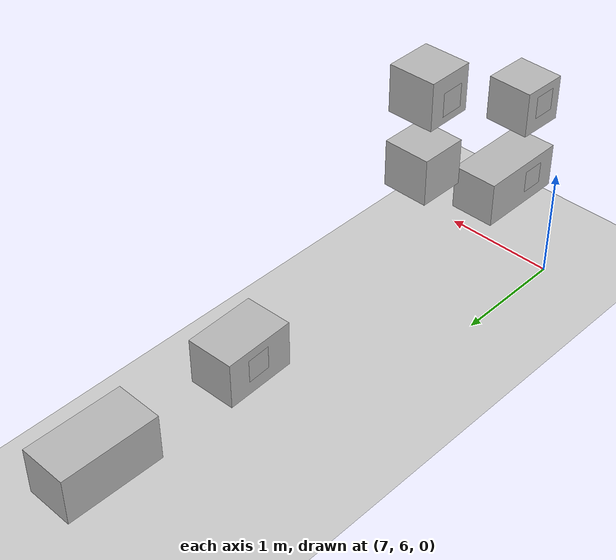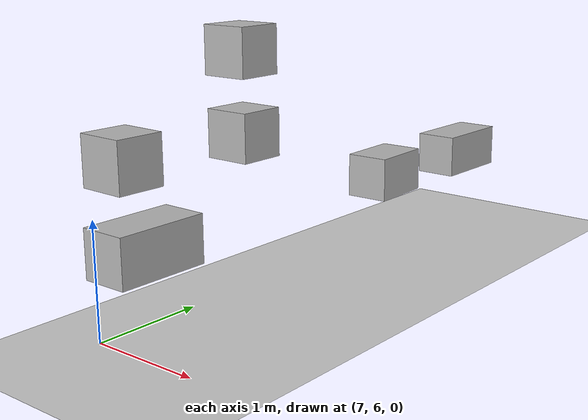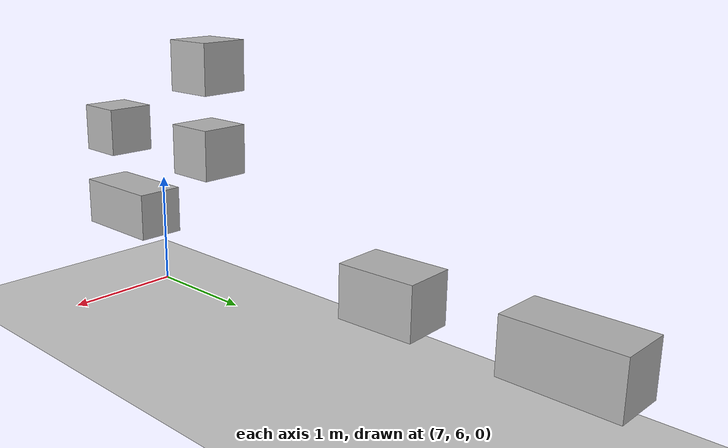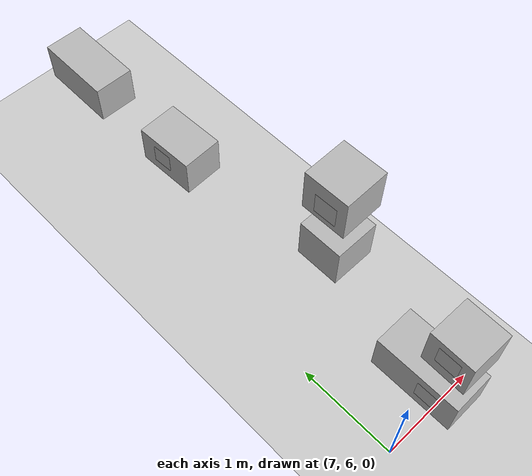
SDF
<sdf version="1.6">
 <world name="default">
  <model name="ground_plane">
   <static>1</static>
   <link name="link">
    <collision name="collision">
     <geometry><plane><normal>0 0 1</normal><size>300 300</size></plane></geometry>
     <surface>
      <contact><collide_bitmask>65535</collide_bitmask></contact>
      <friction><ode><mu>100</mu><mu2>50</mu2></ode></friction>
     </surface>
    </collision>
    <visual name="visual">
     <geometry><plane><normal>0 0 1</normal><size>100 100</size></plane></geometry>
     <material>
      <script><uri>file://media/materials/scripts/gazebo.material</uri><name>Gazebo/Grey</name></script>
     </material>
    </visual>
   </link>
  </model>
  <model name="CuboQR8">
   <link name="link">
    <pose>1.33161 0.916406 0.895911 -0 -0 -0.362899</pose>
    <inertial>
     <mass>0.39</mass>
     <inertia><ixx>0.00058</ixx><ixy>0</ixy><ixz>0</ixz><iyy>0.00058</iyy><iyz>0</iyz><izz>0.00019</izz></inertia>
    </inertial>
    <visual name="visual">
     <geometry><box><size>0.4 0.8 0.4</size></box></geometry>
     <material>
      <script>
       <uri>model://Caja/materials/scripts</uri>
       <uri>model://Caja/materials/textures</uri>
       <name>Caja/Diffuse</name>
      </script>
      <shader type="pixel"/>
     </material>
    </visual>
    <collision name="collision">
     <geometry><box><size>0.4 0.8 0.4</size></box></geometry>
     <surface>
      <friction>
       <ode><mu>1</mu><mu2>1</mu2><fdir1>0 0 0</fdir1><slip1>0</slip1><slip2>0</slip2></ode>
       <torsional>
        <coefficient>1</coefficient>
        <patch_radius>0</patch_radius>
        <surface_radius>0</surface_radius>
        <use_patch_radius>1</use_patch_radius>
        <ode><slip>0</slip></ode>
       </torsional>
      </friction>
      <bounce><restitution_coefficient>0</restitution_coefficient><threshold>1e+06</threshold></bounce>
      <contact>
       <collide_without_contact>0</collide_without_contact>
       <collide_without_contact_bitmask>1</collide_without_contact_bitmask>
       <collide_bitmask>1</collide_bitmask>
       <ode>
        <soft_cfm>0</soft_cfm>
        <soft_erp>0.2</soft_erp>
        <kp>1e+13</kp>
        <kd>1</kd>
        <max_vel>0.01</max_vel>
        <min_depth>0</min_depth>
       </ode>
       <bullet>
        <split_impulse>1</split_impulse>
        <split_impulse_penetration_threshold>-0.01</split_impulse_penetration_threshold>
        <soft_cfm>0</soft_cfm>
        <soft_erp>0.2</soft_erp>
        <kp>1e+13</kp>
        <kd>1</kd>
       </bullet>
      </contact>
     </surface>
    </collision>
   </link>
   <static>0</static>
   <pose>6.52855 9.13895 -0.044992 -1.8e-05 -2.1e-05 0.354797</pose>
  </model>
  <model name="CuboQR30">
   <link name="link">
    <pose>1.4917 0.506438 0.904274 0 -0 0.004736</pose>
    <inertial>
     <mass>0.39</mass>
     <inertia><ixx>0.00058</ixx><ixy>0</ixy><ixz>0</ixz><iyy>0.00058</iyy><iyz>0</iyz><izz>0.00019</izz></inertia>
    </inertial>
    <visual name="visual">
     <geometry><box><size>0.4 0.6 0.4</size></box></geometry>
     <material>
      <script>
       <uri>model://Caja/materials/scripts</uri>
       <uri>model://Caja/materials/textures</uri>
       <name>Caja/Diffuse</name>
      </script>
      <shader type="pixel"/>
     </material>
    </visual>
    <collision name="collision">
     <geometry><box><size>0.4 0.6 0.4</size></box></geometry>
     <surface>
      <friction>
       <ode><mu>1</mu><mu2>1</mu2><fdir1>0 0 0</fdir1><slip1>0</slip1><slip2>0</slip2></ode>
       <torsional>
        <coefficient>1</coefficient>
        <patch_radius>0</patch_radius>
        <surface_radius>0</surface_radius>
        <use_patch_radius>1</use_patch_radius>
        <ode><slip>0</slip></ode>
       </torsional>
      </friction>
      <bounce><restitution_coefficient>0</restitution_coefficient><threshold>1e+06</threshold></bounce>
      <contact>
       <collide_without_contact>0</collide_without_contact>
       <collide_without_contact_bitmask>1</collide_without_contact_bitmask>
       <collide_bitmask>1</collide_bitmask>
       <ode>
        <soft_cfm>0</soft_cfm>
        <soft_erp>0.2</soft_erp>
        <kp>1e+13</kp>
        <kd>1</kd>
        <max_vel>0.01</max_vel>
        <min_depth>0</min_depth>
       </ode>
       <bullet>
        <split_impulse>1</split_impulse>
        <split_impulse_penetration_threshold>-0.01</split_impulse_penetration_threshold>
        <soft_cfm>0</soft_cfm>
        <soft_erp>0.2</soft_erp>
        <kp>1e+13</kp>
        <kd>1</kd>
       </bullet>
      </contact>
     </surface>
    </collision>
   </link>
   <static>0</static>
   <pose>5.99378 8.57527 -0.053353 -9e-06 -7e-06 0.031822</pose>
  </model>
  <model name="CuboQR4">
   <link name="link">
    <pose>1.4541 1.7784 0.940521 0 -0 0</pose>
    <inertial>
     <mass>0.39</mass>
     <inertia><ixx>0.00058</ixx><ixy>0</ixy><ixz>0</ixz><iyy>0.00058</iyy><iyz>0</iyz><izz>0.00019</izz></inertia>
    </inertial>
    <visual name="visual">
     <geometry><box><size>0.4 0.8 0.4</size></box></geometry>
     <material>
      <script>
       <uri>model://Caja/materials/scripts</uri>
       <uri>model://Caja/materials/textures</uri>
       <name>Caja/Diffuse</name>
      </script>
      <shader type="pixel"/>
     </material>
    </visual>
    <collision name="collision">
     <geometry><box><size>0.4 0.8 0.4</size></box></geometry>
     <surface>
      <friction>
       <ode><mu>1</mu><mu2>1</mu2><fdir1>0 0 0</fdir1><slip1>0</slip1><slip2>0</slip2></ode>
       <torsional>
        <coefficient>1</coefficient>
        <patch_radius>0</patch_radius>
        <surface_radius>0</surface_radius>
        <use_patch_radius>1</use_patch_radius>
        <ode><slip>0</slip></ode>
       </torsional>
      </friction>
      <bounce><restitution_coefficient>0</restitution_coefficient><threshold>1e+06</threshold></bounce>
      <contact>
       <collide_without_contact>0</collide_without_contact>
       <collide_without_contact_bitmask>1</collide_without_contact_bitmask>
       <collide_bitmask>1</collide_bitmask>
       <ode>
        <soft_cfm>0</soft_cfm>
        <soft_erp>0.2</soft_erp>
        <kp>1e+13</kp>
        <kd>1</kd>
        <max_vel>0.01</max_vel>
        <min_depth>0</min_depth>
       </ode>
       <bullet>
        <split_impulse>1</split_impulse>
        <split_impulse_penetration_threshold>-0.01</split_impulse_penetration_threshold>
        <soft_cfm>0</soft_cfm>
        <soft_erp>0.2</soft_erp>
        <kp>1e+13</kp>
        <kd>1</kd>
       </bullet>
      </contact>
     </surface>
    </collision>
   </link>
   <static>0</static>
   <pose>5.98441 4.34882 -0.089588 -1.1e-05 6e-06 0.00113</pose>
  </model>
  <model name="CuboQR2">
   <link name="link">
    <pose>1.59419 -0.501465 1.58657 -0 -0 -0.004218</pose>
    <inertial>
     <mass>0.39</mass>
     <inertia><ixx>0.00058</ixx><ixy>0</ixy><ixz>0</ixz><iyy>0.00058</iyy><iyz>0</iyz><izz>0.00019</izz></inertia>
    </inertial>
    <visual name="visual">
     <geometry><box><size>0.4 0.4 0.4</size></box></geometry>
     <material>
      <script>
       <uri>model://Caja/materials/scripts</uri>
       <uri>model://Caja/materials/textures</uri>
       <name>Caja/Diffuse</name>
      </script>
      <shader type="pixel"/>
     </material>
    </visual>
    <collision name="collision">
     <geometry><box><size>0.4 0.4 0.4</size></box></geometry>
     <surface>
      <friction>
       <ode><mu>1</mu><mu2>1</mu2><fdir1>0 0 0</fdir1><slip1>0</slip1><slip2>0</slip2></ode>
       <torsional>
        <coefficient>1</coefficient>
        <patch_radius>0</patch_radius>
        <surface_radius>0</surface_radius>
        <use_patch_radius>1</use_patch_radius>
        <ode><slip>0</slip></ode>
       </torsional>
      </friction>
      <bounce><restitution_coefficient>0</restitution_coefficient><threshold>1e+06</threshold></bounce>
      <contact>
       <collide_without_contact>0</collide_without_contact>
       <collide_without_contact_bitmask>1</collide_without_contact_bitmask>
       <collide_bitmask>1</collide_bitmask>
       <ode>
        <soft_cfm>0</soft_cfm>
        <soft_erp>0.2</soft_erp>
        <kp>1e+13</kp>
        <kd>1</kd>
        <max_vel>0.01</max_vel>
        <min_depth>0</min_depth>
       </ode>
       <bullet>
        <split_impulse>1</split_impulse>
        <split_impulse_penetration_threshold>-0.01</split_impulse_penetration_threshold>
        <soft_cfm>0</soft_cfm>
        <soft_erp>0.2</soft_erp>
        <kp>1e+13</kp>
        <kd>1</kd>
       </bullet>
      </contact>
     </surface>
    </collision>
   </link>
   <static>0</static>
   <pose>5.85276 6.48199 -0.048201 -3e-06 -3e-06 -0.016995</pose>
  </model>
  <model name="CuboQR3">
   <link name="link">
    <pose>1.72852 -0.054688 2.25892 0 -0 0.030523</pose>
    <inertial>
     <mass>0.39</mass>
     <inertia><ixx>0.00058</ixx><ixy>0</ixy><ixz>0</ixz><iyy>0.00058</iyy><iyz>0</iyz><izz>0.00019</izz></inertia>
    </inertial>
    <visual name="visual">
     <geometry><box><size>0.4 0.4 0.4</size></box></geometry>
     <material>
      <script>
       <uri>model://Caja/materials/scripts</uri>
       <uri>model://Caja/materials/textures</uri>
       <name>Caja/Diffuse</name>
      </script>
      <shader type="pixel"/>
     </material>
    </visual>
    <collision name="collision">
     <geometry><box><size>0.4 0.4 0.4</size></box></geometry>
     <surface>
      <friction>
       <ode><mu>1</mu><mu2>1</mu2><fdir1>0 0 0</fdir1><slip1>0</slip1><slip2>0</slip2></ode>
       <torsional>
        <coefficient>1</coefficient>
        <patch_radius>0</patch_radius>
        <surface_radius>0</surface_radius>
        <use_patch_radius>1</use_patch_radius>
        <ode><slip>0</slip></ode>
       </torsional>
      </friction>
      <bounce><restitution_coefficient>0</restitution_coefficient><threshold>1e+06</threshold></bounce>
      <contact>
       <collide_without_contact>0</collide_without_contact>
       <collide_without_contact_bitmask>1</collide_without_contact_bitmask>
       <collide_bitmask>1</collide_bitmask>
       <ode>
        <soft_cfm>0</soft_cfm>
        <soft_erp>0.2</soft_erp>
        <kp>1e+13</kp>
        <kd>1</kd>
        <max_vel>0.01</max_vel>
        <min_depth>0</min_depth>
       </ode>
       <bullet>
        <split_impulse>1</split_impulse>
        <split_impulse_penetration_threshold>-0.01</split_impulse_penetration_threshold>
        <soft_cfm>0</soft_cfm>
        <soft_erp>0.2</soft_erp>
        <kp>1e+13</kp>
        <kd>1</kd>
       </bullet>
      </contact>
     </surface>
    </collision>
   </link>
   <static>0</static>
   <pose>5.70275 7.29111 -0.054836 -5e-06 2e-06 -0.018589</pose>
  </model>
  <model name="Plano">
   <link name="link">
    <gravity>0</gravity>
    <pose>-0.103478 0.986463 0.8108 0 -0 0</pose>
    <inertial>
     <mass>1e-06</mass>
     <inertia><ixx>0.00058</ixx><ixy>0</ixy><ixz>0</ixz><iyy>0.00058</iyy><iyz>0</iyz><izz>0.00019</izz></inertia>
    </inertial>
    <visual name="visual">
     <geometry><box><size>0.2 1e-06 0.2</size></box></geometry>
     <material>
      <script>
       <uri>model://Plano/materials/scripts</uri>
       <uri>model://Plano/materials/textures</uri>
       <name>Plano/Diffuse</name>
      </script>
      <shader type="pixel"/>
     </material>
     <cast_shadows>0</cast_shadows>
    </visual>
    <collision name="collision">
     <geometry><box><size>0.2 1e-06 0.2</size></box></geometry>
     <surface>
      <friction>
       <ode><mu>1</mu><mu2>1</mu2><fdir1>0 0 0</fdir1><slip1>0</slip1><slip2>0</slip2></ode>
       <torsional>
        <coefficient>1</coefficient>
        <patch_radius>0</patch_radius>
        <surface_radius>0</surface_radius>
        <use_patch_radius>1</use_patch_radius>
        <ode><slip>0</slip></ode>
       </torsional>
      </friction>
      <bounce><restitution_coefficient>0</restitution_coefficient><threshold>1e+06</threshold></bounce>
      <contact>
       <collide_without_contact>0</collide_without_contact>
       <collide_without_contact_bitmask>1</collide_without_contact_bitmask>
       <collide_bitmask>1</collide_bitmask>
       <ode>
        <soft_cfm>0</soft_cfm>
        <soft_erp>0.2</soft_erp>
        <kp>1e+13</kp>
        <kd>1</kd>
        <max_vel>0.01</max_vel>
        <min_depth>0</min_depth>
       </ode>
       <bullet>
        <split_impulse>1</split_impulse>
        <split_impulse_penetration_threshold>-0.01</split_impulse_penetration_threshold>
        <soft_cfm>0</soft_cfm>
        <soft_erp>0.2</soft_erp>
        <kp>1e+13</kp>
        <kd>1</kd>
       </bullet>
      </contact>
     </surface>
    </collision>
   </link>
   <static>0</static>
   <pose>6.24495 5.89293 0.053748 0 0 -1.57043</pose>
  </model>
  <model name="Plano2">
   <link name="link">
    <gravity>0</gravity>
    <pose>0.45527 1.12131 0.660976 0 -0 0</pose>
    <inertial>
     <mass>1e-06</mass>
     <inertia><ixx>0.00058</ixx><ixy>0</ixy><ixz>0</ixz><iyy>0.00058</iyy><iyz>0</iyz><izz>0.00019</izz></inertia>
    </inertial>
    <visual name="visual">
     <geometry><box><size>0.2 1e-06 0.2</size></box></geometry>
     <material>
      <script>
       <uri>model://Plano2/materials/scripts</uri>
       <uri>model://Plano2/materials/textures</uri>
       <name>Plano2/Diffuse</name>
      </script>
      <shader type="pixel"/>
     </material>
     <cast_shadows>0</cast_shadows>
    </visual>
    <collision name="collision">
     <geometry><box><size>0.2 1e-06 0.2</size></box></geometry>
     <surface>
      <friction>
       <ode><mu>1</mu><mu2>1</mu2><fdir1>0 0 0</fdir1><slip1>0</slip1><slip2>0</slip2></ode>
       <torsional>
        <coefficient>1</coefficient>
        <patch_radius>0</patch_radius>
        <surface_radius>0</surface_radius>
        <use_patch_radius>1</use_patch_radius>
        <ode><slip>0</slip></ode>
       </torsional>
      </friction>
      <bounce><restitution_coefficient>0</restitution_coefficient><threshold>1e+06</threshold></bounce>
      <contact>
       <collide_without_contact>0</collide_without_contact>
       <collide_without_contact_bitmask>1</collide_without_contact_bitmask>
       <collide_bitmask>1</collide_bitmask>
       <ode>
        <soft_cfm>0</soft_cfm>
        <soft_erp>0.2</soft_erp>
        <kp>1e+13</kp>
        <kd>1</kd>
        <max_vel>0.01</max_vel>
        <min_depth>0</min_depth>
       </ode>
       <bullet>
        <split_impulse>1</split_impulse>
        <split_impulse_penetration_threshold>-0.01</split_impulse_penetration_threshold>
        <soft_cfm>0</soft_cfm>
        <soft_erp>0.2</soft_erp>
        <kp>1e+13</kp>
        <kd>1</kd>
       </bullet>
      </contact>
     </surface>
    </collision>
   </link>
   <static>0</static>
   <pose>6.11634 6.41923 0.907634 0 0 -1.5813</pose>
  </model>
  <model name="Caja">
   <link name="link">
    <pose>1.53848 1.3495 -1.37205 0.031423 0.044064 -0.000927</pose>
    <inertial>
     <mass>0.39</mass>
     <inertia><ixx>0.00058</ixx><ixy>0</ixy><ixz>0</ixz><iyy>0.00058</iyy><iyz>0</iyz><izz>0.00019</izz></inertia>
    </inertial>
    <visual name="visual">
     <geometry><box><size>0.4 0.4 0.4</size></box></geometry>
     <material>
      <script>
       <uri>model://Caja/materials/scripts</uri>
       <uri>model://Caja/materials/textures</uri>
       <name>Caja/Diffuse</name>
      </script>
      <shader type="pixel"/>
     </material>
    </visual>
    <collision name="collision">
     <geometry><box><size>0.4 0.4 0.4</size></box></geometry>
     <surface>
      <friction>
       <ode><mu>1</mu><mu2>1</mu2><fdir1>0 0 0</fdir1><slip1>0</slip1><slip2>0</slip2></ode>
       <torsional>
        <coefficient>1</coefficient>
        <patch_radius>0</patch_radius>
        <surface_radius>0</surface_radius>
        <use_patch_radius>1</use_patch_radius>
        <ode><slip>0</slip></ode>
       </torsional>
      </friction>
      <bounce><restitution_coefficient>0</restitution_coefficient><threshold>1e+06</threshold></bounce>
      <contact>
       <collide_without_contact>0</collide_without_contact>
       <collide_without_contact_bitmask>1</collide_without_contact_bitmask>
       <collide_bitmask>1</collide_bitmask>
       <ode>
        <soft_cfm>0</soft_cfm>
        <soft_erp>0.2</soft_erp>
        <kp>1e+13</kp>
        <kd>1</kd>
        <max_vel>0.01</max_vel>
        <min_depth>0</min_depth>
       </ode>
       <bullet>
        <split_impulse>1</split_impulse>
        <split_impulse_penetration_threshold>-0.01</split_impulse_penetration_threshold>
        <soft_cfm>0</soft_cfm>
        <soft_erp>0.2</soft_erp>
        <kp>1e+13</kp>
        <kd>1</kd>
       </bullet>
      </contact>
     </surface>
    </collision>
   </link>
   <static>0</static>
   <pose>5.83995 5.86895 0.229064 1.5394 -0.002312 -0.046569</pose>
  </model>
  <model name="Plano4">
   <link name="link">
    <gravity>0</gravity>
    <pose>0.342529 1.36427 1.91258 0 -0 0.032722</pose>
    <inertial>
     <mass>1e-06</mass>
     <inertia><ixx>0.00058</ixx><ixy>0</ixy><ixz>0</ixz><iyy>0.00058</iyy><iyz>0</iyz><izz>0.00019</izz></inertia>
    </inertial>
    <visual name="visual">
     <geometry><box><size>0.2 1e-06 0.2</size></box></geometry>
     <material>
      <script>
       <uri>model://Plano4/materials/scripts</uri>
       <uri>model://Plano4/materials/textures</uri>
       <name>Plano4/Diffuse</name>
      </script>
      <shader type="pixel"/>
     </material>
     <cast_shadows>0</cast_shadows>
    </visual>
    <collision name="collision">
     <geometry><box><size>0.2 1e-06 0.2</size></box></geometry>
     <surface>
      <friction>
       <ode><mu>1</mu><mu2>1</mu2><fdir1>0 0 0</fdir1><slip1>0</slip1><slip2>0</slip2></ode>
       <torsional>
        <coefficient>1</coefficient>
        <patch_radius>0</patch_radius>
        <surface_radius>0</surface_radius>
        <use_patch_radius>1</use_patch_radius>
        <ode><slip>0</slip></ode>
       </torsional>
      </friction>
      <bounce><restitution_coefficient>0</restitution_coefficient><threshold>1e+06</threshold></bounce>
      <contact>
       <collide_without_contact>0</collide_without_contact>
       <collide_without_contact_bitmask>1</collide_without_contact_bitmask>
       <collide_bitmask>1</collide_bitmask>
       <ode>
        <soft_cfm>0</soft_cfm>
        <soft_erp>0.2</soft_erp>
        <kp>1e+13</kp>
        <kd>1</kd>
        <max_vel>0.01</max_vel>
        <min_depth>0</min_depth>
       </ode>
       <bullet>
        <split_impulse>1</split_impulse>
        <split_impulse_penetration_threshold>-0.01</split_impulse_penetration_threshold>
        <soft_cfm>0</soft_cfm>
        <soft_erp>0.2</soft_erp>
        <kp>1e+13</kp>
        <kd>1</kd>
       </bullet>
      </contact>
     </surface>
    </collision>
   </link>
   <static>0</static>
   <pose>5.86012 7.53798 0.26346 0 0 -1.5802</pose>
  </model>
  <model name="Plano30">
   <link name="link">
    <gravity>0</gravity>
    <pose>0.142948 1.63527 -0.030652 0 -0 0.095189</pose>
    <inertial>
     <mass>1e-06</mass>
     <inertia><ixx>0.00058</ixx><ixy>0</ixy><ixz>0</ixz><iyy>0.00058</iyy><iyz>0</iyz><izz>0.00019</izz></inertia>
    </inertial>
    <visual name="visual">
     <geometry><box><size>0.2 1e-06 0.2</size></box></geometry>
     <material>
      <script>
       <uri>model://Plano30/materials/scripts</uri>
       <uri>model://Plano30/materials/textures</uri>
       <name>Plano30/Diffuse</name>
      </script>
      <shader type="pixel"/>
     </material>
     <cast_shadows>0</cast_shadows>
    </visual>
    <collision name="collision">
     <geometry><box><size>0.2 1e-06 0.2</size></box></geometry>
     <surface>
      <friction>
       <ode><mu>1</mu><mu2>1</mu2><fdir1>0 0 0</fdir1><slip1>0</slip1><slip2>0</slip2></ode>
       <torsional>
        <coefficient>1</coefficient>
        <patch_radius>0</patch_radius>
        <surface_radius>0</surface_radius>
        <use_patch_radius>1</use_patch_radius>
        <ode><slip>0</slip></ode>
       </torsional>
      </friction>
      <bounce><restitution_coefficient>0</restitution_coefficient><threshold>1e+06</threshold></bounce>
      <contact>
       <collide_without_contact>0</collide_without_contact>
       <collide_without_contact_bitmask>1</collide_without_contact_bitmask>
       <collide_bitmask>1</collide_bitmask>
       <ode>
        <soft_cfm>0</soft_cfm>
        <soft_erp>0.2</soft_erp>
        <kp>1e+13</kp>
        <kd>1</kd>
        <max_vel>0.01</max_vel>
        <min_depth>0</min_depth>
       </ode>
       <bullet>
        <split_impulse>1</split_impulse>
        <split_impulse_penetration_threshold>-0.01</split_impulse_penetration_threshold>
        <soft_cfm>0</soft_cfm>
        <soft_erp>0.2</soft_erp>
        <kp>1e+13</kp>
        <kd>1</kd>
       </bullet>
      </contact>
     </surface>
    </collision>
   </link>
   <static>0</static>
   <pose>5.63172 9.35401 0.90979 0 0 -1.61066</pose>
  </model>
 </world>
</sdf>
